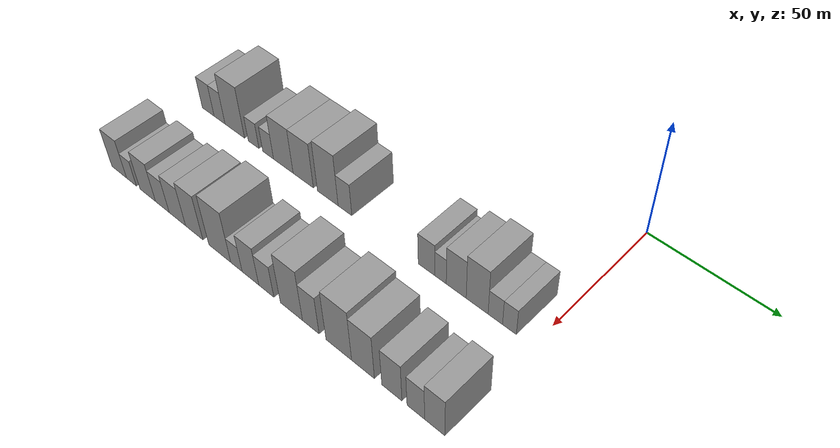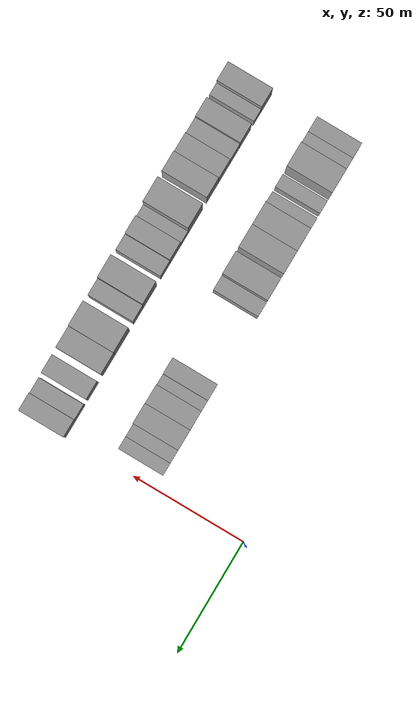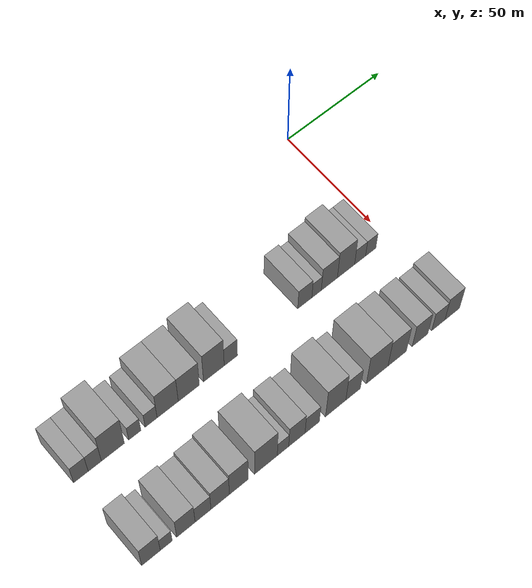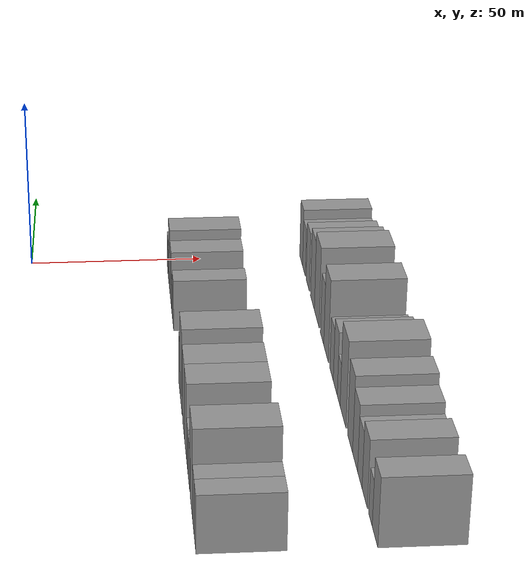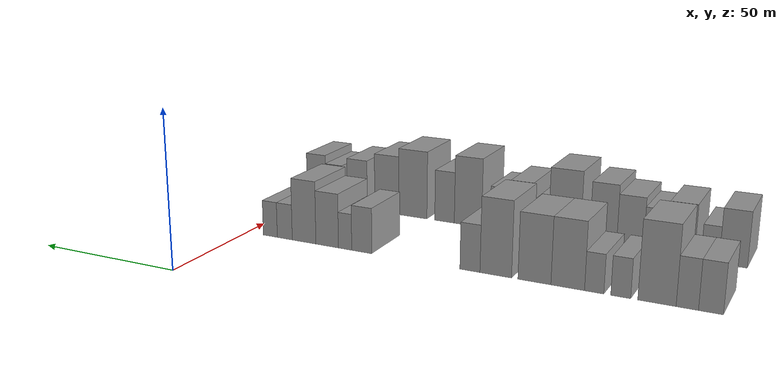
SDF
<sdf version="1.6">
 <world name="default">
  <model name="building_18">
   <static>1</static>
   <pose>50.0000 -151.3319 0 0.000000 0.000000 0.000000</pose>
   <link name="link">
    <pose>0 0 7.50 0 0 0</pose>
    <collision name="collision"><geometry><box><size>20.0000 6.6644 15.0000</size></box></geometry></collision>
    <visual name="visual">
     <cast_shadows>0</cast_shadows>
     <geometry><box><size>20.0000 6.6644 15.0000</size></box></geometry>
     <material>
      <script>
       <uri>model://grey_wall/materials/scripts</uri>
       <uri>model://grey_wall/materials/textures</uri>
       <name>vrc/grey_wall</name>
      </script>
     </material>
    </visual>
   </link>
  </model>
  <model name="building_19">
   <static>1</static>
   <pose>50.0000 -144.9612 0 0.000000 0.000000 0.000000</pose>
   <link name="link">
    <pose>0 0 7.50 0 0 0</pose>
    <collision name="collision"><geometry><box><size>20.0000 6.0769 15.0000</size></box></geometry></collision>
    <visual name="visual">
     <cast_shadows>0</cast_shadows>
     <geometry><box><size>20.0000 6.0769 15.0000</size></box></geometry>
     <material>
      <script>
       <uri>model://grey_wall/materials/scripts</uri>
       <uri>model://grey_wall/materials/textures</uri>
       <name>vrc/grey_wall</name>
      </script>
     </material>
    </visual>
   </link>
  </model>
  <model name="building_20">
   <static>1</static>
   <pose>50.0000 -136.5913 0 0.000000 0.000000 0.000000</pose>
   <link name="link">
    <pose>0 0 12.00 0 0 0</pose>
    <collision name="collision"><geometry><box><size>20.0000 10.6628 24.0000</size></box></geometry></collision>
    <visual name="visual">
     <cast_shadows>0</cast_shadows>
     <geometry><box><size>20.0000 10.6628 24.0000</size></box></geometry>
     <material>
      <script>
       <uri>model://grey_wall/materials/scripts</uri>
       <uri>model://grey_wall/materials/textures</uri>
       <name>vrc/grey_wall</name>
      </script>
     </material>
    </visual>
   </link>
  </model>
  <model name="building_21">
   <static>1</static>
   <pose>50.0000 -126.3974 0 0.000000 0.000000 0.000000</pose>
   <link name="link">
    <pose>0 0 6.00 0 0 0</pose>
    <collision name="collision"><geometry><box><size>20.0000 5.7250 12.0000</size></box></geometry></collision>
    <visual name="visual">
     <cast_shadows>0</cast_shadows>
     <geometry><box><size>20.0000 5.7250 12.0000</size></box></geometry>
     <material>
      <script>
       <uri>model://grey_wall/materials/scripts</uri>
       <uri>model://grey_wall/materials/textures</uri>
       <name>vrc/grey_wall</name>
      </script>
     </material>
    </visual>
   </link>
  </model>
  <model name="building_22">
   <static>1</static>
   <pose>50.0000 -118.7112 0 0.000000 0.000000 0.000000</pose>
   <link name="link">
    <pose>0 0 6.00 0 0 0</pose>
    <collision name="collision"><geometry><box><size>20.0000 5.6475 12.0000</size></box></geometry></collision>
    <visual name="visual">
     <cast_shadows>0</cast_shadows>
     <geometry><box><size>20.0000 5.6475 12.0000</size></box></geometry>
     <material>
      <script>
       <uri>model://grey_wall/materials/scripts</uri>
       <uri>model://grey_wall/materials/textures</uri>
       <name>vrc/grey_wall</name>
      </script>
     </material>
    </visual>
   </link>
  </model>
  <model name="building_23">
   <static>1</static>
   <pose>50.0000 -110.8488 0 0.000000 0.000000 0.000000</pose>
   <link name="link">
    <pose>0 0 10.50 0 0 0</pose>
    <collision name="collision"><geometry><box><size>20.0000 10.0774 21.0000</size></box></geometry></collision>
    <visual name="visual">
     <cast_shadows>0</cast_shadows>
     <geometry><box><size>20.0000 10.0774 21.0000</size></box></geometry>
     <material>
      <script>
       <uri>model://grey_wall/materials/scripts</uri>
       <uri>model://grey_wall/materials/textures</uri>
       <name>vrc/grey_wall</name>
      </script>
     </material>
    </visual>
   </link>
  </model>
  <model name="building_24">
   <static>1</static>
   <pose>50.0000 -100.7308 0 0.000000 0.000000 0.000000</pose>
   <link name="link">
    <pose>0 0 10.50 0 0 0</pose>
    <collision name="collision"><geometry><box><size>20.0000 10.1586 21.0000</size></box></geometry></collision>
    <visual name="visual">
     <cast_shadows>0</cast_shadows>
     <geometry><box><size>20.0000 10.1586 21.0000</size></box></geometry>
     <material>
      <script>
       <uri>model://grey_wall/materials/scripts</uri>
       <uri>model://grey_wall/materials/textures</uri>
       <name>vrc/grey_wall</name>
      </script>
     </material>
    </visual>
   </link>
  </model>
  <model name="building_25">
   <static>1</static>
   <pose>50.0000 -88.6149 0 0.000000 0.000000 0.000000</pose>
   <link name="link">
    <pose>0 0 12.00 0 0 0</pose>
    <collision name="collision"><geometry><box><size>20.0000 10.0731 24.0000</size></box></geometry></collision>
    <visual name="visual">
     <cast_shadows>0</cast_shadows>
     <geometry><box><size>20.0000 10.0731 24.0000</size></box></geometry>
     <material>
      <script>
       <uri>model://grey_wall/materials/scripts</uri>
       <uri>model://grey_wall/materials/textures</uri>
       <name>vrc/grey_wall</name>
      </script>
     </material>
    </visual>
   </link>
  </model>
  <model name="building_26">
   <static>1</static>
   <pose>50.0000 -80.3143 0 0.000000 0.000000 0.000000</pose>
   <link name="link">
    <pose>0 0 7.50 0 0 0</pose>
    <collision name="collision"><geometry><box><size>20.0000 6.5280 15.0000</size></box></geometry></collision>
    <visual name="visual">
     <cast_shadows>0</cast_shadows>
     <geometry><box><size>20.0000 6.5280 15.0000</size></box></geometry>
     <material>
      <script>
       <uri>model://grey_wall/materials/scripts</uri>
       <uri>model://grey_wall/materials/textures</uri>
       <name>vrc/grey_wall</name>
      </script>
     </material>
    </visual>
   </link>
  </model>
  <model name="building_27">
   <static>1</static>
   <pose>50.0000 -43.2637 0 0.000000 0.000000 0.000000</pose>
   <link name="link">
    <pose>0 0 7.50 0 0 0</pose>
    <collision name="collision"><geometry><box><size>20.0000 7.1911 15.0000</size></box></geometry></collision>
    <visual name="visual">
     <cast_shadows>0</cast_shadows>
     <geometry><box><size>20.0000 7.1911 15.0000</size></box></geometry>
     <material>
      <script>
       <uri>model://grey_wall/materials/scripts</uri>
       <uri>model://grey_wall/materials/textures</uri>
       <name>vrc/grey_wall</name>
      </script>
     </material>
    </visual>
   </link>
  </model>
  <model name="building_28">
   <static>1</static>
   <pose>50.0000 -37.2475 0 0.000000 0.000000 0.000000</pose>
   <link name="link">
    <pose>0 0 6.00 0 0 0</pose>
    <collision name="collision"><geometry><box><size>20.0000 4.8413 12.0000</size></box></geometry></collision>
    <visual name="visual">
     <cast_shadows>0</cast_shadows>
     <geometry><box><size>20.0000 4.8413 12.0000</size></box></geometry>
     <material>
      <script>
       <uri>model://grey_wall/materials/scripts</uri>
       <uri>model://grey_wall/materials/textures</uri>
       <name>vrc/grey_wall</name>
      </script>
     </material>
    </visual>
   </link>
  </model>
  <model name="building_29">
   <static>1</static>
   <pose>50.0000 -30.6591 0 0.000000 0.000000 0.000000</pose>
   <link name="link">
    <pose>0 0 9.00 0 0 0</pose>
    <collision name="collision"><geometry><box><size>20.0000 8.3355 18.0000</size></box></geometry></collision>
    <visual name="visual">
     <cast_shadows>0</cast_shadows>
     <geometry><box><size>20.0000 8.3355 18.0000</size></box></geometry>
     <material>
      <script>
       <uri>model://grey_wall/materials/scripts</uri>
       <uri>model://grey_wall/materials/textures</uri>
       <name>vrc/grey_wall</name>
      </script>
     </material>
    </visual>
   </link>
  </model>
  <model name="building_30">
   <static>1</static>
   <pose>50.0000 -22.0079 0 0.000000 0.000000 0.000000</pose>
   <link name="link">
    <pose>0 0 10.50 0 0 0</pose>
    <collision name="collision"><geometry><box><size>20.0000 8.9668 21.0000</size></box></geometry></collision>
    <visual name="visual">
     <cast_shadows>0</cast_shadows>
     <geometry><box><size>20.0000 8.9668 21.0000</size></box></geometry>
     <material>
      <script>
       <uri>model://grey_wall/materials/scripts</uri>
       <uri>model://grey_wall/materials/textures</uri>
       <name>vrc/grey_wall</name>
      </script>
     </material>
    </visual>
   </link>
  </model>
  <model name="building_31">
   <static>1</static>
   <pose>50.0000 -14.6391 0 0.000000 0.000000 0.000000</pose>
   <link name="link">
    <pose>0 0 6.00 0 0 0</pose>
    <collision name="collision"><geometry><box><size>20.0000 5.7708 12.0000</size></box></geometry></collision>
    <visual name="visual">
     <cast_shadows>0</cast_shadows>
     <geometry><box><size>20.0000 5.7708 12.0000</size></box></geometry>
     <material>
      <script>
       <uri>model://grey_wall/materials/scripts</uri>
       <uri>model://grey_wall/materials/textures</uri>
       <name>vrc/grey_wall</name>
      </script>
     </material>
    </visual>
   </link>
  </model>
  <model name="building_32">
   <static>1</static>
   <pose>50.0000 -9.0255 0 0.000000 0.000000 0.000000</pose>
   <link name="link">
    <pose>0 0 6.00 0 0 0</pose>
    <collision name="collision"><geometry><box><size>20.0000 5.4564 12.0000</size></box></geometry></collision>
    <visual name="visual">
     <cast_shadows>0</cast_shadows>
     <geometry><box><size>20.0000 5.4564 12.0000</size></box></geometry>
     <material>
      <script>
       <uri>model://grey_wall/materials/scripts</uri>
       <uri>model://grey_wall/materials/textures</uri>
       <name>vrc/grey_wall</name>
      </script>
     </material>
    </visual>
   </link>
  </model>
  <model name="building_80">
   <static>1</static>
   <pose>90.0000 -150.6316 0 0.000000 0.000000 0.000000</pose>
   <link name="link">
    <pose>0 0 9.00 0 0 0</pose>
    <collision name="collision"><geometry><box><size>20.0000 8.4029 18.0000</size></box></geometry></collision>
    <visual name="visual">
     <cast_shadows>0</cast_shadows>
     <geometry><box><size>20.0000 8.4029 18.0000</size></box></geometry>
     <material>
      <script>
       <uri>model://grey_wall/materials/scripts</uri>
       <uri>model://grey_wall/materials/textures</uri>
       <name>vrc/grey_wall</name>
      </script>
     </material>
    </visual>
   </link>
  </model>
  <model name="building_81">
   <static>1</static>
   <pose>90.0000 -143.6912 0 0.000000 0.000000 0.000000</pose>
   <link name="link">
    <pose>0 0 6.00 0 0 0</pose>
    <collision name="collision"><geometry><box><size>20.0000 5.4779 12.0000</size></box></geometry></collision>
    <visual name="visual">
     <cast_shadows>0</cast_shadows>
     <geometry><box><size>20.0000 5.4779 12.0000</size></box></geometry>
     <material>
      <script>
       <uri>model://grey_wall/materials/scripts</uri>
       <uri>model://grey_wall/materials/textures</uri>
       <name>vrc/grey_wall</name>
      </script>
     </material>
    </visual>
   </link>
  </model>
  <model name="building_82">
   <static>1</static>
   <pose>90.0000 -134.6924 0 0.000000 0.000000 0.000000</pose>
   <link name="link">
    <pose>0 0 9.00 0 0 0</pose>
    <collision name="collision"><geometry><box><size>20.0000 8.5197 18.0000</size></box></geometry></collision>
    <visual name="visual">
     <cast_shadows>0</cast_shadows>
     <geometry><box><size>20.0000 8.5197 18.0000</size></box></geometry>
     <material>
      <script>
       <uri>model://grey_wall/materials/scripts</uri>
       <uri>model://grey_wall/materials/textures</uri>
       <name>vrc/grey_wall</name>
      </script>
     </material>
    </visual>
   </link>
  </model>
  <model name="building_83">
   <static>1</static>
   <pose>90.0000 -126.7604 0 0.000000 0.000000 0.000000</pose>
   <link name="link">
    <pose>0 0 7.50 0 0 0</pose>
    <collision name="collision"><geometry><box><size>20.0000 7.3443 15.0000</size></box></geometry></collision>
    <visual name="visual">
     <cast_shadows>0</cast_shadows>
     <geometry><box><size>20.0000 7.3443 15.0000</size></box></geometry>
     <material>
      <script>
       <uri>model://grey_wall/materials/scripts</uri>
       <uri>model://grey_wall/materials/textures</uri>
       <name>vrc/grey_wall</name>
      </script>
     </material>
    </visual>
   </link>
  </model>
  <model name="building_84">
   <static>1</static>
   <pose>90.0000 -118.7728 0 0.000000 0.000000 0.000000</pose>
   <link name="link">
    <pose>0 0 9.00 0 0 0</pose>
    <collision name="collision"><geometry><box><size>20.0000 8.6309 18.0000</size></box></geometry></collision>
    <visual name="visual">
     <cast_shadows>0</cast_shadows>
     <geometry><box><size>20.0000 8.6309 18.0000</size></box></geometry>
     <material>
      <script>
       <uri>model://grey_wall/materials/scripts</uri>
       <uri>model://grey_wall/materials/textures</uri>
       <name>vrc/grey_wall</name>
      </script>
     </material>
    </visual>
   </link>
  </model>
  <model name="building_85">
   <static>1</static>
   <pose>90.0000 -110.0141 0 0.000000 0.000000 0.000000</pose>
   <link name="link">
    <pose>0 0 10.50 0 0 0</pose>
    <collision name="collision"><geometry><box><size>20.0000 8.8865 21.0000</size></box></geometry></collision>
    <visual name="visual">
     <cast_shadows>0</cast_shadows>
     <geometry><box><size>20.0000 8.8865 21.0000</size></box></geometry>
     <material>
      <script>
       <uri>model://grey_wall/materials/scripts</uri>
       <uri>model://grey_wall/materials/textures</uri>
       <name>vrc/grey_wall</name>
      </script>
     </material>
    </visual>
   </link>
  </model>
  <model name="building_86">
   <static>1</static>
   <pose>90.0000 -97.1039 0 0.000000 0.000000 0.000000</pose>
   <link name="link">
    <pose>0 0 12.00 0 0 0</pose>
    <collision name="collision"><geometry><box><size>20.0000 10.9340 24.0000</size></box></geometry></collision>
    <visual name="visual">
     <cast_shadows>0</cast_shadows>
     <geometry><box><size>20.0000 10.9340 24.0000</size></box></geometry>
     <material>
      <script>
       <uri>model://grey_wall/materials/scripts</uri>
       <uri>model://grey_wall/materials/textures</uri>
       <name>vrc/grey_wall</name>
      </script>
     </material>
    </visual>
   </link>
  </model>
  <model name="building_87">
   <static>1</static>
   <pose>90.0000 -88.8692 0 0.000000 0.000000 0.000000</pose>
   <link name="link">
    <pose>0 0 6.00 0 0 0</pose>
    <collision name="collision"><geometry><box><size>20.0000 5.5353 12.0000</size></box></geometry></collision>
    <visual name="visual">
     <cast_shadows>0</cast_shadows>
     <geometry><box><size>20.0000 5.5353 12.0000</size></box></geometry>
     <material>
      <script>
       <uri>model://grey_wall/materials/scripts</uri>
       <uri>model://grey_wall/materials/textures</uri>
       <name>vrc/grey_wall</name>
      </script>
     </material>
    </visual>
   </link>
  </model>
  <model name="building_88">
   <static>1</static>
   <pose>90.0000 -82.1230 0 0.000000 0.000000 0.000000</pose>
   <link name="link">
    <pose>0 0 9.00 0 0 0</pose>
    <collision name="collision"><geometry><box><size>20.0000 7.9572 18.0000</size></box></geometry></collision>
    <visual name="visual">
     <cast_shadows>0</cast_shadows>
     <geometry><box><size>20.0000 7.9572 18.0000</size></box></geometry>
     <material>
      <script>
       <uri>model://grey_wall/materials/scripts</uri>
       <uri>model://grey_wall/materials/textures</uri>
       <name>vrc/grey_wall</name>
      </script>
     </material>
    </visual>
   </link>
  </model>
  <model name="building_89">
   <static>1</static>
   <pose>90.0000 -74.6112 0 0.000000 0.000000 0.000000</pose>
   <link name="link">
    <pose>0 0 7.50 0 0 0</pose>
    <collision name="collision"><geometry><box><size>20.0000 7.0663 15.0000</size></box></geometry></collision>
    <visual name="visual">
     <cast_shadows>0</cast_shadows>
     <geometry><box><size>20.0000 7.0663 15.0000</size></box></geometry>
     <material>
      <script>
       <uri>model://grey_wall/materials/scripts</uri>
       <uri>model://grey_wall/materials/textures</uri>
       <name>vrc/grey_wall</name>
      </script>
     </material>
    </visual>
   </link>
  </model>
  <model name="building_90">
   <static>1</static>
   <pose>90.0000 -63.0447 0 0.000000 0.000000 0.000000</pose>
   <link name="link">
    <pose>0 0 12.00 0 0 0</pose>
    <collision name="collision"><geometry><box><size>20.0000 10.0668 24.0000</size></box></geometry></collision>
    <visual name="visual">
     <cast_shadows>0</cast_shadows>
     <geometry><box><size>20.0000 10.0668 24.0000</size></box></geometry>
     <material>
      <script>
       <uri>model://grey_wall/materials/scripts</uri>
       <uri>model://grey_wall/materials/textures</uri>
       <name>vrc/grey_wall</name>
      </script>
     </material>
    </visual>
   </link>
  </model>
  <model name="building_91">
   <static>1</static>
   <pose>90.0000 -54.3347 0 0.000000 0.000000 0.000000</pose>
   <link name="link">
    <pose>0 0 9.00 0 0 0</pose>
    <collision name="collision"><geometry><box><size>20.0000 7.3531 18.0000</size></box></geometry></collision>
    <visual name="visual">
     <cast_shadows>0</cast_shadows>
     <geometry><box><size>20.0000 7.3531 18.0000</size></box></geometry>
     <material>
      <script>
       <uri>model://grey_wall/materials/scripts</uri>
       <uri>model://grey_wall/materials/textures</uri>
       <name>vrc/grey_wall</name>
      </script>
     </material>
    </visual>
   </link>
  </model>
  <model name="building_92">
   <static>1</static>
   <pose>90.0000 -42.1600 0 0.000000 0.000000 0.000000</pose>
   <link name="link">
    <pose>0 0 12.00 0 0 0</pose>
    <collision name="collision"><geometry><box><size>20.0000 10.9962 24.0000</size></box></geometry></collision>
    <visual name="visual">
     <cast_shadows>0</cast_shadows>
     <geometry><box><size>20.0000 10.9962 24.0000</size></box></geometry>
     <material>
      <script>
       <uri>model://grey_wall/materials/scripts</uri>
       <uri>model://grey_wall/materials/textures</uri>
       <name>vrc/grey_wall</name>
      </script>
     </material>
    </visual>
   </link>
  </model>
  <model name="building_93">
   <static>1</static>
   <pose>90.0000 -31.9244 0 0.000000 0.000000 0.000000</pose>
   <link name="link">
    <pose>0 0 10.50 0 0 0</pose>
    <collision name="collision"><geometry><box><size>20.0000 9.4751 21.0000</size></box></geometry></collision>
    <visual name="visual">
     <cast_shadows>0</cast_shadows>
     <geometry><box><size>20.0000 9.4751 21.0000</size></box></geometry>
     <material>
      <script>
       <uri>model://grey_wall/materials/scripts</uri>
       <uri>model://grey_wall/materials/textures</uri>
       <name>vrc/grey_wall</name>
      </script>
     </material>
    </visual>
   </link>
  </model>
  <model name="building_94">
   <static>1</static>
   <pose>90.0000 -20.1261 0 0.000000 0.000000 0.000000</pose>
   <link name="link">
    <pose>0 0 9.00 0 0 0</pose>
    <collision name="collision"><geometry><box><size>20.0000 8.1213 18.0000</size></box></geometry></collision>
    <visual name="visual">
     <cast_shadows>0</cast_shadows>
     <geometry><box><size>20.0000 8.1213 18.0000</size></box></geometry>
     <material>
      <script>
       <uri>model://grey_wall/materials/scripts</uri>
       <uri>model://grey_wall/materials/textures</uri>
       <name>vrc/grey_wall</name>
      </script>
     </material>
    </visual>
   </link>
  </model>
  <model name="building_95">
   <static>1</static>
   <pose>90.0000 -10.6147 0 0.000000 0.000000 0.000000</pose>
   <link name="link">
    <pose>0 0 7.50 0 0 0</pose>
    <collision name="collision"><geometry><box><size>20.0000 6.9015 15.0000</size></box></geometry></collision>
    <visual name="visual">
     <cast_shadows>0</cast_shadows>
     <geometry><box><size>20.0000 6.9015 15.0000</size></box></geometry>
     <material>
      <script>
       <uri>model://grey_wall/materials/scripts</uri>
       <uri>model://grey_wall/materials/textures</uri>
       <name>vrc/grey_wall</name>
      </script>
     </material>
    </visual>
   </link>
  </model>
  <model name="building_96">
   <static>1</static>
   <pose>90.0000 -3.2669 0 0.000000 0.000000 0.000000</pose>
   <link name="link">
    <pose>0 0 9.00 0 0 0</pose>
    <collision name="collision"><geometry><box><size>20.0000 7.7943 18.0000</size></box></geometry></collision>
    <visual name="visual">
     <cast_shadows>0</cast_shadows>
     <geometry><box><size>20.0000 7.7943 18.0000</size></box></geometry>
     <material>
      <script>
       <uri>model://grey_wall/materials/scripts</uri>
       <uri>model://grey_wall/materials/textures</uri>
       <name>vrc/grey_wall</name>
      </script>
     </material>
    </visual>
   </link>
  </model>
 </world>
</sdf>
